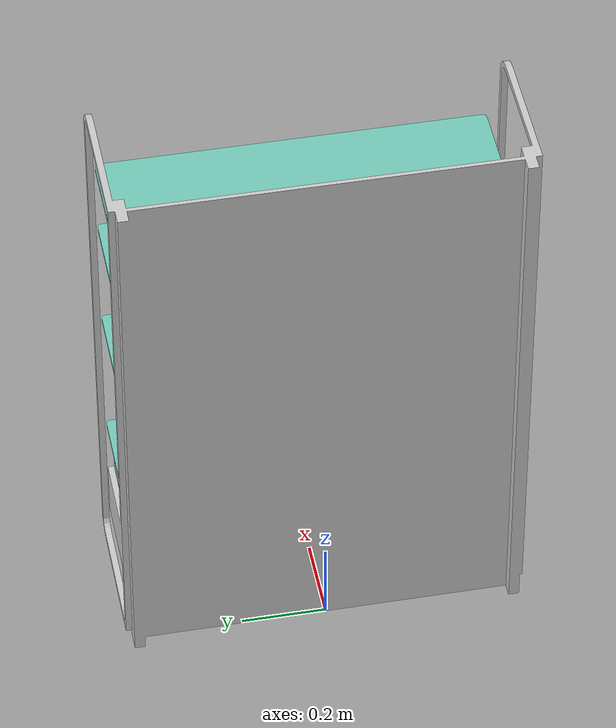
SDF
<?xml version="1.0" ?>
<sdf version="1.3">
  <model name="fcsc_shelf">
    <static>true</static>

    <link name="base">
      <visual name="visual">
        <geometry>
          <mesh>
            <uri>model://fcsc_shelf/meshes/shelf_base.dae</uri>
          </mesh>
        </geometry>
      </visual>
      <collision name="simple_collision">
        <geometry>
          <mesh>
            <uri>model://fcsc_shelf/meshes/shelf_base.dae</uri>
          </mesh>
        </geometry>
      </collision>
    </link>

    <link name="box">
      <visual name="visual">
        <geometry>
          <mesh>
            <uri>model://fcsc_shelf/meshes/shelf_box.dae</uri>
          </mesh>
        </geometry>
      </visual>
      <collision name="simple_collision">
        <geometry>
          <mesh>
            <uri>model://fcsc_shelf/meshes/shelf_box.dae</uri>
          </mesh>
        </geometry>
      </collision>
    </link>

    <link name="board_org">
      <pose>0 0 0.31  0 0 0</pose>
      <visual name="visual">
        <geometry>
          <mesh>
            <uri>model://fcsc_shelf/meshes/shelf_board.dae</uri>
          </mesh>
        </geometry>
      </visual>
      <collision name="simple_collision">
        <geometry>
          <mesh>
            <uri>model://fcsc_shelf/meshes/shelf_board.dae</uri>
          </mesh>
        </geometry>
      </collision>
    </link>

    <link name="board0">
      <pose>0 0 0.66  0 0 0</pose>
      <visual name="visual">
        <geometry>
          <mesh>
            <uri>model://fcsc_shelf/meshes/shelf_board.dae</uri>
          </mesh>
        </geometry>
      </visual>
      <collision name="simple_collision">
        <geometry>
          <mesh>
            <uri>model://fcsc_shelf/meshes/shelf_board.dae</uri>
          </mesh>
        </geometry>
      </collision>
    </link>

    <link name="board1">
      <pose>0 0 0.95  0 0 0</pose>
      <visual name="visual">
        <geometry>
          <mesh>
            <uri>model://fcsc_shelf/meshes/shelf_board.dae</uri>
          </mesh>
        </geometry>
      </visual>
      <collision name="simple_collision">
        <geometry>
          <mesh>
            <uri>model://fcsc_shelf/meshes/shelf_board.dae</uri>
          </mesh>
        </geometry>
      </collision>
    </link>

    <link name="board2">
      <pose>0 0 1.135  0 0 0</pose>
      <visual name="visual">
        <geometry>
          <mesh>
            <uri>model://fcsc_shelf/meshes/shelf_board.dae</uri>
          </mesh>
        </geometry>
      </visual>
      <collision name="simple_collision">
        <geometry>
          <mesh>
            <uri>model://fcsc_shelf/meshes/shelf_board.dae</uri>
          </mesh>
        </geometry>
      </collision>
    </link>
  </model>
</sdf>
